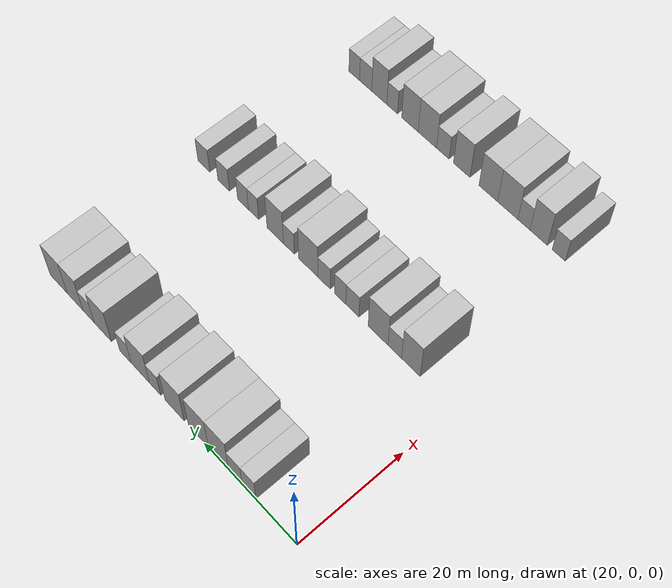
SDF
<sdf version="1.6">
 <world name="default">
  <model name="building_111">
   <static>1</static>
   <pose>25.0000 10.2117 0 0.000000 0.000000 0.000000</pose>
   <link name="link">
    <pose>0 0 3.00 0 0 0</pose>
    <collision name="collision"><geometry><box><size>10.0000 2.9679 6.0000</size></box></geometry></collision>
    <visual name="visual">
     <cast_shadows>0</cast_shadows>
     <geometry><box><size>10.0000 2.9679 6.0000</size></box></geometry>
     <material>
      <script>
       <uri>model://HANNAS_wall/materials/scripts</uri>
       <uri>model://HANNAS_wall/materials/textures</uri>
       <name>vrc/HANNAS_wall</name>
      </script>
     </material>
    </visual>
   </link>
  </model>
  <model name="building_112">
   <static>1</static>
   <pose>25.0000 13.1830 0 0.000000 0.000000 0.000000</pose>
   <link name="link">
    <pose>0 0 3.00 0 0 0</pose>
    <collision name="collision"><geometry><box><size>10.0000 2.9747 6.0000</size></box></geometry></collision>
    <visual name="visual">
     <cast_shadows>0</cast_shadows>
     <geometry><box><size>10.0000 2.9747 6.0000</size></box></geometry>
     <material>
      <script>
       <uri>model://HANNAS_wall/materials/scripts</uri>
       <uri>model://HANNAS_wall/materials/textures</uri>
       <name>vrc/HANNAS_wall</name>
      </script>
     </material>
    </visual>
   </link>
  </model>
  <model name="building_113">
   <static>1</static>
   <pose>25.0000 16.8834 0 0.000000 0.000000 0.000000</pose>
   <link name="link">
    <pose>0 0 4.50 0 0 0</pose>
    <collision name="collision"><geometry><box><size>10.0000 4.4260 9.0000</size></box></geometry></collision>
    <visual name="visual">
     <cast_shadows>0</cast_shadows>
     <geometry><box><size>10.0000 4.4260 9.0000</size></box></geometry>
     <material>
      <script>
       <uri>model://HANNAS_wall/materials/scripts</uri>
       <uri>model://HANNAS_wall/materials/textures</uri>
       <name>vrc/HANNAS_wall</name>
      </script>
     </material>
    </visual>
   </link>
  </model>
  <model name="building_114">
   <static>1</static>
   <pose>25.0000 21.3311 0 0.000000 0.000000 0.000000</pose>
   <link name="link">
    <pose>0 0 4.50 0 0 0</pose>
    <collision name="collision"><geometry><box><size>10.0000 4.4696 9.0000</size></box></geometry></collision>
    <visual name="visual">
     <cast_shadows>0</cast_shadows>
     <geometry><box><size>10.0000 4.4696 9.0000</size></box></geometry>
     <material>
      <script>
       <uri>model://HANNAS_wall/materials/scripts</uri>
       <uri>model://HANNAS_wall/materials/textures</uri>
       <name>vrc/HANNAS_wall</name>
      </script>
     </material>
    </visual>
   </link>
  </model>
  <model name="building_115">
   <static>1</static>
   <pose>25.0000 26.7613 0 0.000000 0.000000 0.000000</pose>
   <link name="link">
    <pose>0 0 4.50 0 0 0</pose>
    <collision name="collision"><geometry><box><size>10.0000 4.3907 9.0000</size></box></geometry></collision>
    <visual name="visual">
     <cast_shadows>0</cast_shadows>
     <geometry><box><size>10.0000 4.3907 9.0000</size></box></geometry>
     <material>
      <script>
       <uri>model://HANNAS_wall/materials/scripts</uri>
       <uri>model://HANNAS_wall/materials/textures</uri>
       <name>vrc/HANNAS_wall</name>
      </script>
     </material>
    </visual>
   </link>
  </model>
  <model name="building_116">
   <static>1</static>
   <pose>25.0000 31.2799 0 0.000000 0.000000 0.000000</pose>
   <link name="link">
    <pose>0 0 3.00 0 0 0</pose>
    <collision name="collision"><geometry><box><size>10.0000 2.6464 6.0000</size></box></geometry></collision>
    <visual name="visual">
     <cast_shadows>0</cast_shadows>
     <geometry><box><size>10.0000 2.6464 6.0000</size></box></geometry>
     <material>
      <script>
       <uri>model://HANNAS_wall/materials/scripts</uri>
       <uri>model://HANNAS_wall/materials/textures</uri>
       <name>vrc/HANNAS_wall</name>
      </script>
     </material>
    </visual>
   </link>
  </model>
  <model name="building_117">
   <static>1</static>
   <pose>25.0000 34.7538 0 0.000000 0.000000 0.000000</pose>
   <link name="link">
    <pose>0 0 4.50 0 0 0</pose>
    <collision name="collision"><geometry><box><size>10.0000 4.3014 9.0000</size></box></geometry></collision>
    <visual name="visual">
     <cast_shadows>0</cast_shadows>
     <geometry><box><size>10.0000 4.3014 9.0000</size></box></geometry>
     <material>
      <script>
       <uri>model://HANNAS_wall/materials/scripts</uri>
       <uri>model://HANNAS_wall/materials/textures</uri>
       <name>vrc/HANNAS_wall</name>
      </script>
     </material>
    </visual>
   </link>
  </model>
  <model name="building_118">
   <static>1</static>
   <pose>25.0000 38.2938 0 0.000000 0.000000 0.000000</pose>
   <link name="link">
    <pose>0 0 3.00 0 0 0</pose>
    <collision name="collision"><geometry><box><size>10.0000 2.7786 6.0000</size></box></geometry></collision>
    <visual name="visual">
     <cast_shadows>0</cast_shadows>
     <geometry><box><size>10.0000 2.7786 6.0000</size></box></geometry>
     <material>
      <script>
       <uri>model://HANNAS_wall/materials/scripts</uri>
       <uri>model://HANNAS_wall/materials/textures</uri>
       <name>vrc/HANNAS_wall</name>
      </script>
     </material>
    </visual>
   </link>
  </model>
  <model name="building_119">
   <static>1</static>
   <pose>25.0000 43.7816 0 0.000000 0.000000 0.000000</pose>
   <link name="link">
    <pose>0 0 4.50 0 0 0</pose>
    <collision name="collision"><geometry><box><size>10.0000 4.1969 9.0000</size></box></geometry></collision>
    <visual name="visual">
     <cast_shadows>0</cast_shadows>
     <geometry><box><size>10.0000 4.1969 9.0000</size></box></geometry>
     <material>
      <script>
       <uri>model://HANNAS_wall/materials/scripts</uri>
       <uri>model://HANNAS_wall/materials/textures</uri>
       <name>vrc/HANNAS_wall</name>
      </script>
     </material>
    </visual>
   </link>
  </model>
  <model name="building_120">
   <static>1</static>
   <pose>25.0000 47.2675 0 0.000000 0.000000 0.000000</pose>
   <link name="link">
    <pose>0 0 3.00 0 0 0</pose>
    <collision name="collision"><geometry><box><size>10.0000 2.7750 6.0000</size></box></geometry></collision>
    <visual name="visual">
     <cast_shadows>0</cast_shadows>
     <geometry><box><size>10.0000 2.7750 6.0000</size></box></geometry>
     <material>
      <script>
       <uri>model://HANNAS_wall/materials/scripts</uri>
       <uri>model://HANNAS_wall/materials/textures</uri>
       <name>vrc/HANNAS_wall</name>
      </script>
     </material>
    </visual>
   </link>
  </model>
  <model name="building_121">
   <static>1</static>
   <pose>25.0000 50.6203 0 0.000000 0.000000 0.000000</pose>
   <link name="link">
    <pose>0 0 4.50 0 0 0</pose>
    <collision name="collision"><geometry><box><size>10.0000 3.9307 9.0000</size></box></geometry></collision>
    <visual name="visual">
     <cast_shadows>0</cast_shadows>
     <geometry><box><size>10.0000 3.9307 9.0000</size></box></geometry>
     <material>
      <script>
       <uri>model://HANNAS_wall/materials/scripts</uri>
       <uri>model://HANNAS_wall/materials/textures</uri>
       <name>vrc/HANNAS_wall</name>
      </script>
     </material>
    </visual>
   </link>
  </model>
  <model name="building_122">
   <static>1</static>
   <pose>25.0000 54.7574 0 0.000000 0.000000 0.000000</pose>
   <link name="link">
    <pose>0 0 4.50 0 0 0</pose>
    <collision name="collision"><geometry><box><size>10.0000 4.3434 9.0000</size></box></geometry></collision>
    <visual name="visual">
     <cast_shadows>0</cast_shadows>
     <geometry><box><size>10.0000 4.3434 9.0000</size></box></geometry>
     <material>
      <script>
       <uri>model://HANNAS_wall/materials/scripts</uri>
       <uri>model://HANNAS_wall/materials/textures</uri>
       <name>vrc/HANNAS_wall</name>
      </script>
     </material>
    </visual>
   </link>
  </model>
  <model name="building_328">
   <static>1</static>
   <pose>55.0000 8.9341 0 0.000000 0.000000 0.000000</pose>
   <link name="link">
    <pose>0 0 4.50 0 0 0</pose>
    <collision name="collision"><geometry><box><size>10.0000 3.9457 9.0000</size></box></geometry></collision>
    <visual name="visual">
     <cast_shadows>0</cast_shadows>
     <geometry><box><size>10.0000 3.9457 9.0000</size></box></geometry>
     <material>
      <script>
       <uri>model://HANNAS_wall/materials/scripts</uri>
       <uri>model://HANNAS_wall/materials/textures</uri>
       <name>vrc/HANNAS_wall</name>
      </script>
     </material>
    </visual>
   </link>
  </model>
  <model name="building_329">
   <static>1</static>
   <pose>55.0000 12.3651 0 0.000000 0.000000 0.000000</pose>
   <link name="link">
    <pose>0 0 3.00 0 0 0</pose>
    <collision name="collision"><geometry><box><size>10.0000 2.9163 6.0000</size></box></geometry></collision>
    <visual name="visual">
     <cast_shadows>0</cast_shadows>
     <geometry><box><size>10.0000 2.9163 6.0000</size></box></geometry>
     <material>
      <script>
       <uri>model://HANNAS_wall/materials/scripts</uri>
       <uri>model://HANNAS_wall/materials/textures</uri>
       <name>vrc/HANNAS_wall</name>
      </script>
     </material>
    </visual>
   </link>
  </model>
  <model name="building_330">
   <static>1</static>
   <pose>55.0000 15.9874 0 0.000000 0.000000 0.000000</pose>
   <link name="link">
    <pose>0 0 4.50 0 0 0</pose>
    <collision name="collision"><geometry><box><size>10.0000 4.3282 9.0000</size></box></geometry></collision>
    <visual name="visual">
     <cast_shadows>0</cast_shadows>
     <geometry><box><size>10.0000 4.3282 9.0000</size></box></geometry>
     <material>
      <script>
       <uri>model://HANNAS_wall/materials/scripts</uri>
       <uri>model://HANNAS_wall/materials/textures</uri>
       <name>vrc/HANNAS_wall</name>
      </script>
     </material>
    </visual>
   </link>
  </model>
  <model name="building_331">
   <static>1</static>
   <pose>55.0000 21.6239 0 0.000000 0.000000 0.000000</pose>
   <link name="link">
    <pose>0 0 3.00 0 0 0</pose>
    <collision name="collision"><geometry><box><size>10.0000 2.9448 6.0000</size></box></geometry></collision>
    <visual name="visual">
     <cast_shadows>0</cast_shadows>
     <geometry><box><size>10.0000 2.9448 6.0000</size></box></geometry>
     <material>
      <script>
       <uri>model://HANNAS_wall/materials/scripts</uri>
       <uri>model://HANNAS_wall/materials/textures</uri>
       <name>vrc/HANNAS_wall</name>
      </script>
     </material>
    </visual>
   </link>
  </model>
  <model name="building_332">
   <static>1</static>
   <pose>55.0000 24.3472 0 0.000000 0.000000 0.000000</pose>
   <link name="link">
    <pose>0 0 3.00 0 0 0</pose>
    <collision name="collision"><geometry><box><size>10.0000 2.5016 6.0000</size></box></geometry></collision>
    <visual name="visual">
     <cast_shadows>0</cast_shadows>
     <geometry><box><size>10.0000 2.5016 6.0000</size></box></geometry>
     <material>
      <script>
       <uri>model://HANNAS_wall/materials/scripts</uri>
       <uri>model://HANNAS_wall/materials/textures</uri>
       <name>vrc/HANNAS_wall</name>
      </script>
     </material>
    </visual>
   </link>
  </model>
  <model name="building_333">
   <static>1</static>
   <pose>55.0000 27.9847 0 0.000000 0.000000 0.000000</pose>
   <link name="link">
    <pose>0 0 3.00 0 0 0</pose>
    <collision name="collision"><geometry><box><size>10.0000 2.7734 6.0000</size></box></geometry></collision>
    <visual name="visual">
     <cast_shadows>0</cast_shadows>
     <geometry><box><size>10.0000 2.7734 6.0000</size></box></geometry>
     <material>
      <script>
       <uri>model://HANNAS_wall/materials/scripts</uri>
       <uri>model://HANNAS_wall/materials/textures</uri>
       <name>vrc/HANNAS_wall</name>
      </script>
     </material>
    </visual>
   </link>
  </model>
  <model name="building_334">
   <static>1</static>
   <pose>55.0000 31.5963 0 0.000000 0.000000 0.000000</pose>
   <link name="link">
    <pose>0 0 4.50 0 0 0</pose>
    <collision name="collision"><geometry><box><size>10.0000 4.4500 9.0000</size></box></geometry></collision>
    <visual name="visual">
     <cast_shadows>0</cast_shadows>
     <geometry><box><size>10.0000 4.4500 9.0000</size></box></geometry>
     <material>
      <script>
       <uri>model://HANNAS_wall/materials/scripts</uri>
       <uri>model://HANNAS_wall/materials/textures</uri>
       <name>vrc/HANNAS_wall</name>
      </script>
     </material>
    </visual>
   </link>
  </model>
  <model name="building_335">
   <static>1</static>
   <pose>55.0000 36.1047 0 0.000000 0.000000 0.000000</pose>
   <link name="link">
    <pose>0 0 3.00 0 0 0</pose>
    <collision name="collision"><geometry><box><size>10.0000 2.5667 6.0000</size></box></geometry></collision>
    <visual name="visual">
     <cast_shadows>0</cast_shadows>
     <geometry><box><size>10.0000 2.5667 6.0000</size></box></geometry>
     <material>
      <script>
       <uri>model://HANNAS_wall/materials/scripts</uri>
       <uri>model://HANNAS_wall/materials/textures</uri>
       <name>vrc/HANNAS_wall</name>
      </script>
     </material>
    </visual>
   </link>
  </model>
  <model name="building_336">
   <static>1</static>
   <pose>55.0000 39.3250 0 0.000000 0.000000 0.000000</pose>
   <link name="link">
    <pose>0 0 4.50 0 0 0</pose>
    <collision name="collision"><geometry><box><size>10.0000 3.8740 9.0000</size></box></geometry></collision>
    <visual name="visual">
     <cast_shadows>0</cast_shadows>
     <geometry><box><size>10.0000 3.8740 9.0000</size></box></geometry>
     <material>
      <script>
       <uri>model://HANNAS_wall/materials/scripts</uri>
       <uri>model://HANNAS_wall/materials/textures</uri>
       <name>vrc/HANNAS_wall</name>
      </script>
     </material>
    </visual>
   </link>
  </model>
  <model name="building_337">
   <static>1</static>
   <pose>55.0000 44.4969 0 0.000000 0.000000 0.000000</pose>
   <link name="link">
    <pose>0 0 3.00 0 0 0</pose>
    <collision name="collision"><geometry><box><size>10.0000 2.4699 6.0000</size></box></geometry></collision>
    <visual name="visual">
     <cast_shadows>0</cast_shadows>
     <geometry><box><size>10.0000 2.4699 6.0000</size></box></geometry>
     <material>
      <script>
       <uri>model://HANNAS_wall/materials/scripts</uri>
       <uri>model://HANNAS_wall/materials/textures</uri>
       <name>vrc/HANNAS_wall</name>
      </script>
     </material>
    </visual>
   </link>
  </model>
  <model name="building_338">
   <static>1</static>
   <pose>55.0000 47.0464 0 0.000000 0.000000 0.000000</pose>
   <link name="link">
    <pose>0 0 3.00 0 0 0</pose>
    <collision name="collision"><geometry><box><size>10.0000 2.6291 6.0000</size></box></geometry></collision>
    <visual name="visual">
     <cast_shadows>0</cast_shadows>
     <geometry><box><size>10.0000 2.6291 6.0000</size></box></geometry>
     <material>
      <script>
       <uri>model://HANNAS_wall/materials/scripts</uri>
       <uri>model://HANNAS_wall/materials/textures</uri>
       <name>vrc/HANNAS_wall</name>
      </script>
     </material>
    </visual>
   </link>
  </model>
  <model name="building_339">
   <static>1</static>
   <pose>55.0000 51.7870 0 0.000000 0.000000 0.000000</pose>
   <link name="link">
    <pose>0 0 3.00 0 0 0</pose>
    <collision name="collision"><geometry><box><size>10.0000 2.8521 6.0000</size></box></geometry></collision>
    <visual name="visual">
     <cast_shadows>0</cast_shadows>
     <geometry><box><size>10.0000 2.8521 6.0000</size></box></geometry>
     <material>
      <script>
       <uri>model://HANNAS_wall/materials/scripts</uri>
       <uri>model://HANNAS_wall/materials/textures</uri>
       <name>vrc/HANNAS_wall</name>
      </script>
     </material>
    </visual>
   </link>
  </model>
  <model name="building_340">
   <static>1</static>
   <pose>55.0000 56.7075 0 0.000000 0.000000 0.000000</pose>
   <link name="link">
    <pose>0 0 3.00 0 0 0</pose>
    <collision name="collision"><geometry><box><size>10.0000 2.9890 6.0000</size></box></geometry></collision>
    <visual name="visual">
     <cast_shadows>0</cast_shadows>
     <geometry><box><size>10.0000 2.9890 6.0000</size></box></geometry>
     <material>
      <script>
       <uri>model://HANNAS_wall/materials/scripts</uri>
       <uri>model://HANNAS_wall/materials/textures</uri>
       <name>vrc/HANNAS_wall</name>
      </script>
     </material>
    </visual>
   </link>
  </model>
  <model name="building_557">
   <static>1</static>
   <pose>85.0000 7.5162 0 0.000000 0.000000 0.000000</pose>
   <link name="link">
    <pose>0 0 3.00 0 0 0</pose>
    <collision name="collision"><geometry><box><size>10.0000 2.7610 6.0000</size></box></geometry></collision>
    <visual name="visual">
     <cast_shadows>0</cast_shadows>
     <geometry><box><size>10.0000 2.7610 6.0000</size></box></geometry>
     <material>
      <script>
       <uri>model://HANNAS_wall/materials/scripts</uri>
       <uri>model://HANNAS_wall/materials/textures</uri>
       <name>vrc/HANNAS_wall</name>
      </script>
     </material>
    </visual>
   </link>
  </model>
  <model name="building_558">
   <static>1</static>
   <pose>85.0000 11.7572 0 0.000000 0.000000 0.000000</pose>
   <link name="link">
    <pose>0 0 4.50 0 0 0</pose>
    <collision name="collision"><geometry><box><size>10.0000 3.7209 9.0000</size></box></geometry></collision>
    <visual name="visual">
     <cast_shadows>0</cast_shadows>
     <geometry><box><size>10.0000 3.7209 9.0000</size></box></geometry>
     <material>
      <script>
       <uri>model://HANNAS_wall/materials/scripts</uri>
       <uri>model://HANNAS_wall/materials/textures</uri>
       <name>vrc/HANNAS_wall</name>
      </script>
     </material>
    </visual>
   </link>
  </model>
  <model name="building_559">
   <static>1</static>
   <pose>85.0000 14.9195 0 0.000000 0.000000 0.000000</pose>
   <link name="link">
    <pose>0 0 3.00 0 0 0</pose>
    <collision name="collision"><geometry><box><size>10.0000 2.6038 6.0000</size></box></geometry></collision>
    <visual name="visual">
     <cast_shadows>0</cast_shadows>
     <geometry><box><size>10.0000 2.6038 6.0000</size></box></geometry>
     <material>
      <script>
       <uri>model://HANNAS_wall/materials/scripts</uri>
       <uri>model://HANNAS_wall/materials/textures</uri>
       <name>vrc/HANNAS_wall</name>
      </script>
     </material>
    </visual>
   </link>
  </model>
  <model name="building_560">
   <static>1</static>
   <pose>85.0000 18.4328 0 0.000000 0.000000 0.000000</pose>
   <link name="link">
    <pose>0 0 4.50 0 0 0</pose>
    <collision name="collision"><geometry><box><size>10.0000 4.4228 9.0000</size></box></geometry></collision>
    <visual name="visual">
     <cast_shadows>0</cast_shadows>
     <geometry><box><size>10.0000 4.4228 9.0000</size></box></geometry>
     <material>
      <script>
       <uri>model://HANNAS_wall/materials/scripts</uri>
       <uri>model://HANNAS_wall/materials/textures</uri>
       <name>vrc/HANNAS_wall</name>
      </script>
     </material>
    </visual>
   </link>
  </model>
  <model name="building_561">
   <static>1</static>
   <pose>85.0000 22.7089 0 0.000000 0.000000 0.000000</pose>
   <link name="link">
    <pose>0 0 4.50 0 0 0</pose>
    <collision name="collision"><geometry><box><size>10.0000 4.1293 9.0000</size></box></geometry></collision>
    <visual name="visual">
     <cast_shadows>0</cast_shadows>
     <geometry><box><size>10.0000 4.1293 9.0000</size></box></geometry>
     <material>
      <script>
       <uri>model://HANNAS_wall/materials/scripts</uri>
       <uri>model://HANNAS_wall/materials/textures</uri>
       <name>vrc/HANNAS_wall</name>
      </script>
     </material>
    </visual>
   </link>
  </model>
  <model name="building_562">
   <static>1</static>
   <pose>85.0000 28.6474 0 0.000000 0.000000 0.000000</pose>
   <link name="link">
    <pose>0 0 4.50 0 0 0</pose>
    <collision name="collision"><geometry><box><size>10.0000 3.7478 9.0000</size></box></geometry></collision>
    <visual name="visual">
     <cast_shadows>0</cast_shadows>
     <geometry><box><size>10.0000 3.7478 9.0000</size></box></geometry>
     <material>
      <script>
       <uri>model://HANNAS_wall/materials/scripts</uri>
       <uri>model://HANNAS_wall/materials/textures</uri>
       <name>vrc/HANNAS_wall</name>
      </script>
     </material>
    </visual>
   </link>
  </model>
  <model name="building_563">
   <static>1</static>
   <pose>85.0000 32.9686 0 0.000000 0.000000 0.000000</pose>
   <link name="link">
    <pose>0 0 3.00 0 0 0</pose>
    <collision name="collision"><geometry><box><size>10.0000 2.8946 6.0000</size></box></geometry></collision>
    <visual name="visual">
     <cast_shadows>0</cast_shadows>
     <geometry><box><size>10.0000 2.8946 6.0000</size></box></geometry>
     <material>
      <script>
       <uri>model://HANNAS_wall/materials/scripts</uri>
       <uri>model://HANNAS_wall/materials/textures</uri>
       <name>vrc/HANNAS_wall</name>
      </script>
     </material>
    </visual>
   </link>
  </model>
  <model name="building_564">
   <static>1</static>
   <pose>85.0000 36.5430 0 0.000000 0.000000 0.000000</pose>
   <link name="link">
    <pose>0 0 4.50 0 0 0</pose>
    <collision name="collision"><geometry><box><size>10.0000 4.2541 9.0000</size></box></geometry></collision>
    <visual name="visual">
     <cast_shadows>0</cast_shadows>
     <geometry><box><size>10.0000 4.2541 9.0000</size></box></geometry>
     <material>
      <script>
       <uri>model://HANNAS_wall/materials/scripts</uri>
       <uri>model://HANNAS_wall/materials/textures</uri>
       <name>vrc/HANNAS_wall</name>
      </script>
     </material>
    </visual>
   </link>
  </model>
  <model name="building_565">
   <static>1</static>
   <pose>85.0000 40.5988 0 0.000000 0.000000 0.000000</pose>
   <link name="link">
    <pose>0 0 4.50 0 0 0</pose>
    <collision name="collision"><geometry><box><size>10.0000 3.8574 9.0000</size></box></geometry></collision>
    <visual name="visual">
     <cast_shadows>0</cast_shadows>
     <geometry><box><size>10.0000 3.8574 9.0000</size></box></geometry>
     <material>
      <script>
       <uri>model://HANNAS_wall/materials/scripts</uri>
       <uri>model://HANNAS_wall/materials/textures</uri>
       <name>vrc/HANNAS_wall</name>
      </script>
     </material>
    </visual>
   </link>
  </model>
  <model name="building_566">
   <static>1</static>
   <pose>85.0000 44.7881 0 0.000000 0.000000 0.000000</pose>
   <link name="link">
    <pose>0 0 3.00 0 0 0</pose>
    <collision name="collision"><geometry><box><size>10.0000 2.5213 6.0000</size></box></geometry></collision>
    <visual name="visual">
     <cast_shadows>0</cast_shadows>
     <geometry><box><size>10.0000 2.5213 6.0000</size></box></geometry>
     <material>
      <script>
       <uri>model://HANNAS_wall/materials/scripts</uri>
       <uri>model://HANNAS_wall/materials/textures</uri>
       <name>vrc/HANNAS_wall</name>
      </script>
     </material>
    </visual>
   </link>
  </model>
  <model name="building_567">
   <static>1</static>
   <pose>85.0000 47.8681 0 0.000000 0.000000 0.000000</pose>
   <link name="link">
    <pose>0 0 4.50 0 0 0</pose>
    <collision name="collision"><geometry><box><size>10.0000 3.6388 9.0000</size></box></geometry></collision>
    <visual name="visual">
     <cast_shadows>0</cast_shadows>
     <geometry><box><size>10.0000 3.6388 9.0000</size></box></geometry>
     <material>
      <script>
       <uri>model://HANNAS_wall/materials/scripts</uri>
       <uri>model://HANNAS_wall/materials/textures</uri>
       <name>vrc/HANNAS_wall</name>
      </script>
     </material>
    </visual>
   </link>
  </model>
  <model name="building_568">
   <static>1</static>
   <pose>85.0000 51.1766 0 0.000000 0.000000 0.000000</pose>
   <link name="link">
    <pose>0 0 3.00 0 0 0</pose>
    <collision name="collision"><geometry><box><size>10.0000 2.9781 6.0000</size></box></geometry></collision>
    <visual name="visual">
     <cast_shadows>0</cast_shadows>
     <geometry><box><size>10.0000 2.9781 6.0000</size></box></geometry>
     <material>
      <script>
       <uri>model://HANNAS_wall/materials/scripts</uri>
       <uri>model://HANNAS_wall/materials/textures</uri>
       <name>vrc/HANNAS_wall</name>
      </script>
     </material>
    </visual>
   </link>
  </model>
  <model name="building_569">
   <static>1</static>
   <pose>85.0000 53.9725 0 0.000000 0.000000 0.000000</pose>
   <link name="link">
    <pose>0 0 3.00 0 0 0</pose>
    <collision name="collision"><geometry><box><size>10.0000 2.6137 6.0000</size></box></geometry></collision>
    <visual name="visual">
     <cast_shadows>0</cast_shadows>
     <geometry><box><size>10.0000 2.6137 6.0000</size></box></geometry>
     <material>
      <script>
       <uri>model://HANNAS_wall/materials/scripts</uri>
       <uri>model://HANNAS_wall/materials/textures</uri>
       <name>vrc/HANNAS_wall</name>
      </script>
     </material>
    </visual>
   </link>
  </model>
 </world>
</sdf>
